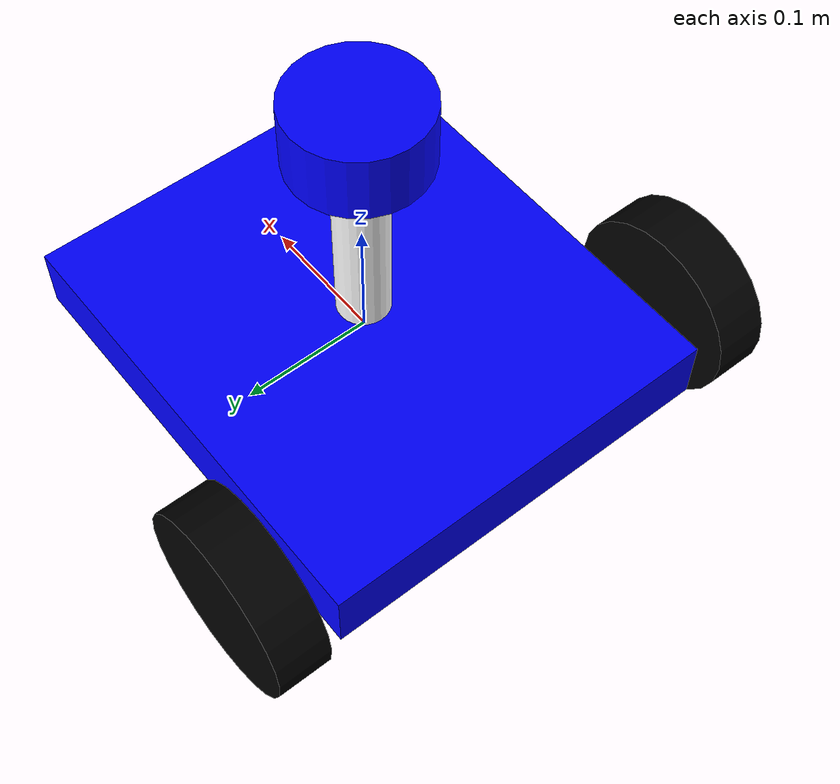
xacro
<?xml version="1.0"?>
<!-- lidar_scanning_robot.xacro -->
<robot xmlns:xacro="http://www.ros.org/wiki/xacro" name="lidar_scanning_robot">

  <!-- Include property definitions -->
  <xacro:include filename="$(find lidar_scanning_robot)/urdf/properties.xacro" />

  <!-- Include robot macros -->
  <xacro:include filename="$(find lidar_scanning_robot)/urdf/macros.xacro" />

  <!-- Include Gazebo configurations -->
  <xacro:include filename="$(find lidar_scanning_robot)/urdf/gazebo.xacro" />

  <!-- Include Lidar -->
  <xacro:include filename="$(find lidar_scanning_robot)/urdf/lidar.xacro" />

  <!-- Base Link -->
  <link name="base_link">
    <origin xyz="0.2 0.1 ${base_height/2}" rpy="0 0 0"/>
    <visual>
      <geometry>
        <box size="${base_length} ${base_width} ${base_height/2}"/>
      </geometry>
      <material name="blue">
        <color rgba="0 0 1 1"/>
      </material>
    </visual>
    <collision>
      <geometry>
        <box size="${base_length} ${base_width} ${base_height}"/>
      </geometry>
    </collision>
    <inertial>
      <mass value="0.5"/>
      <inertia ixx="0.001" ixy="0" ixz="0" iyy="0.001" iyz="0" izz="0.001"/>
      <origin xyz="0 0 0" rpy="0 0 0"/>
    </inertial>
  </link>

  <xacro:caster_wheel />

  <xacro:wheel prefix="left" x="${-base_length/3}" y="1"/>
  <xacro:wheel prefix="right" x="${-base_length/3}" y="-1"/>

</robot>

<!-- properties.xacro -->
<robot xmlns:xacro="http://www.ros.org/wiki/xacro">
  <!-- Robot Properties -->
  <xacro:property name="base_width" value="0.31"/>
  <xacro:property name="base_length" value="0.35"/>
  <xacro:property name="base_height" value="0.1"/>
  <xacro:property name="wheel_radius" value="0.07"/>
  <xacro:property name="wheel_width" value="0.04"/>
  <xacro:property name="caster_radius" value="0.02"/>
  <xacro:property name="arm_length" value="0.1"/>
  <xacro:property name="arm_radius" value="0.015"/>

  <xacro:property name="wall_length" value="0.3"/>
  <xacro:property name="wall_thickness" value="0.01"/>
  <xacro:property name="wall_height" value="0.16"/>

  <!-- LIDAR properties -->
  <xacro:property name="lidar_cylinder_height" value="0.2"/>
  <xacro:property name="lidar_radius" value="0.05"/>
  <xacro:property name="lidar_height" value="0.05"/>
  <xacro:property name="lidar_mount_x" value="0.0"/>
  <xacro:property name="lidar_mount_y" value="0.0"/>
</robot>

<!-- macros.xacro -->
<robot xmlns:xacro="http://www.ros.org/wiki/xacro">
  <!-- Wheel Macro -->
  <xacro:macro name="wheel" params="prefix x y">
    <link name="${prefix}_wheel">
      <visual>
        <geometry>
          <cylinder radius="${wheel_radius}" length="${wheel_width}"/>
        </geometry>
        <material name="black">
          <color rgba="0 0 0 1"/>
        </material>
      </visual>
      <collision>
        <geometry>
          <cylinder radius="${wheel_radius}" length="${2 * wheel_width}"/>
        </geometry>
      </collision>
      <inertial>
        <mass value="1"/>
        <inertia ixx="0.0007" ixy="0" ixz="0" iyy="0.0007" iyz="0" izz="0.0007"/>
      </inertial>
    </link>

    <joint name="${prefix}_wheel_joint" type="continuous">
      <parent link="base_link"/>
      <child link="${prefix}_wheel"/>
      <origin xyz="${x} ${y * (base_width/2 + wheel_radius/2)} 0" rpy="${pi/2} 0 0"/>
      <axis xyz="0 0 -1"/>
      <joint_properties damping="0.5" friction="0.5"/>
    </joint>
  </xacro:macro>

  <!-- Caster Wheel Macro -->
  <xacro:macro name="caster_wheel">
    <link name="caster_wheel">
      <visual>
        <geometry>
          <sphere radius="${caster_radius}"/>
        </geometry>
        <material name="grey">
          <color rgba="0.5 0.5 0.5 1"/>
        </material>
      </visual>
      <collision>
        <geometry>
          <sphere radius="${caster_radius}"/>
        </geometry>
      </collision>
      <inertial>
        <mass value="0.3"/>
        <inertia ixx="0.00018" ixy="0" ixz="0" iyy="0.00018" iyz="0" izz="0.00018"/>
        <origin xyz="0 0 0" rpy="0 0 0" />
      </inertial>
    </link>

    <joint name="caster_wheel_joint" type="fixed">
      <parent link="base_link"/>
      <child link="caster_wheel"/>
      <origin xyz="${base_length/3.3} 0 ${-caster_radius}" rpy="0 0 0"/>  <!-- Corrected Z offset for caster wheel -->
      <dynamics damping="0.01"/>
    </joint>
  </xacro:macro>

  <!-- Arm Macro -->
  <xacro:macro name="arm" params="prefix side_mult">
    <link name="${prefix}_arm">
      <visual>
        <geometry>
          <cylinder radius="${arm_radius}" length="${arm_length}"/>
        </geometry>
        <material name="red">
          <color rgba="1 0 0 1"/>
        </material>
      </visual>
      <collision>
        <geometry>
          <cylinder radius="${arm_radius}" length="${arm_length}"/>
        </geometry>
      </collision>
      <inertial>
        <mass value="0.25"/>
        <inertia ixx="0.0001" ixy="0" ixz="0" iyy="0.0001" iyz="0" izz="0.0001"/>
      </inertial>
    </link>

    <joint name="${prefix}_arm_joint" type="fixed">
      <parent link="base_link"/>
      <child link="${prefix}_arm"/>
      <origin xyz="${base_length/2} ${side_mult * (base_width /2 - 0.005)} 0.04"/>  <!-- Corrected Z offset for arm joint -->
      <axis xyz="0 1 0"/>
      <!-- Adjusted limits for arm movement -->
    </joint>

    <!-- Gripper -->
    <link name="${prefix}_gripper">
      <visual>
        <geometry>
          <box size="${arm_length} 0.02 0.08"/>
        </geometry>
        <material name="grey">
          <color rgba="0.5 0.5 0.5 1"/>
        </material>
      </visual>
      <collision>
        <geometry>
          <box size="${arm_length} 0.02 0.08"/>
        </geometry>
      </collision>
      <inertial>
        <mass value="0.2"/>
        <inertia ixx="0.00005" ixy="0" ixz="0" iyy="0.0005" iyz="0" izz="0.00005"/>
      </inertial>
    </link>

    <joint name="${prefix}_gripper_joint" type="fixed">
      <parent link="${prefix}_arm"/>
      <child link="${prefix}_gripper"/>
      <origin xyz="${arm_length/2} 0 0"/>
    </joint>
  </xacro:macro>

  <xacro:macro name="guide_wall" params="side prefix">
    <link name="${prefix}_wall">
      <visual>
        <geometry>
          <box size="${wall_length} ${wall_thickness} ${wall_height}"/>
        </geometry>
        <material name="grey">
          <color rgba="0.5 0.5 0.5 1"/>
        </material>
      </visual>
      <collision>
        <geometry>
          <box size="${wall_length} ${wall_thickness} ${wall_height}"/>
        </geometry>
      </collision>
      <inertial>
        <mass value="0.3"/>
        <inertia ixx="0.001" ixy="0" ixz="0" iyy="0.001" iyz="0" izz="0.001"/>
      </inertial>
   </link>

   <joint name="${prefix}_wall_joint" type="fixed">
      <parent link="base_link"/>
      <child link="${prefix}_wall"/>
      <origin xyz="${base_length/2 + wall_length/2} ${side * (base_width/2 + wall_thickness/2)} ${wall_height/2}" rpy="0 0 0"/>
    </joint>
  </xacro:macro>

</robot>

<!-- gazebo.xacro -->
<robot xmlns:xacro="http://www.ros.org/wiki/xacro">
  <!-- ROS Control plugin -->
  <gazebo>
    <plugin name="diff_drive_controller" filename="libgazebo_ros_diff_drive.so">
      <robotNamespace>/</robotNamespace>
      <commandTopic>cmd_vel</commandTopic>
      <odometryTopic>odom</odometryTopic>
      <odometryFrame>odom</odometryFrame>
      <robotBaseFrame>base_link</robotBaseFrame>
      <leftJoint>left_wheel_joint</leftJoint>
      <rightJoint>right_wheel_joint</rightJoint>
      <wheelSeparation>${base_width}</wheelSeparation>
      <legacyMode>false</legacyMode>
      <wheelDiameter>${2 * wheel_radius}</wheelDiameter>
      <robotBaseFrame>base_link</robotBaseFrame>
      <publishOdomTF>true</publishOdomTF>
      <publishWheelJointState>true</publishWheelJointState>
      <max_wheel_torque>10</max_wheel_torque>
      <wheelAcceleration>0.5</wheelAcceleration>
      <max_wheel_acceleration>0.5</max_wheel_acceleration>
      <wheelTorque>10</wheelTorque>
      <updateRate>50</updateRate>
      <max_velocity>0.5</max_velocity>
      <rosDebugLevel>0</rosDebugLevel>
    </plugin>
  </gazebo>

  <gazebo reference="laser_link">
    <sensor type="ray" name="rplidar">
      <pose>0 0 0 0 0 0</pose>
      <visualize>true</visualize>
      <update_rate>10</update_rate>
      <ray>
        <scan>
          <horizontal>
            <samples>360</samples>
            <resolution>1</resolution>
            <min_angle>-3.14159</min_angle>
            <max_angle>3.14159</max_angle>
          </horizontal>
        </scan>
        <range>
          <min>0.1</min>
          <max>6.0</max>
          <resolution>0.01</resolution>
        </range>
      </ray>
      <plugin name="gazebo_ros_rplidar_controller" filename="libgazebo_ros_laser.so">
        <topicName>/scan</topicName>
        <frameName>laser_link</frameName>
      </plugin>
    </sensor>
  </gazebo>

  <material name="orange">
    <color rgba="1.0 0.423529411765 0.0392156862745 1.0"/>
  </material>

  <material name="black">
    <color rgba="0 0 0 1"/>
  </material>

  <gazebo reference="base_link">
    <material>Gazebo/Blue</material>
    <mu1 value="1.0"/>
    <mu2 value="1.0"/>
    <kp  value="10000000.0"/>
    <kd  value="100.0"/>
    <maxVel>0.0</maxVel>
    <minDepth>0.001</minDepth>
  </gazebo>

  <gazebo reference="caster_wheel">
    <mu1 value="1.0"/>
    <mu2 value="1.0"/>
    <kp  value="10000000.0" />
    <kd  value="1.0" />
    <material>Gazebo/Orange</material>
  </gazebo>
  <gazebo reference="right_wheel">
    <mu1 value="1.5"/>
    <mu2 value="1.5"/>
    <kp  value="10000000.0" />
    <kd  value="1.0" />
    <fdir1 value="1 0 0"/>
    <material>Gazebo/Black</material>
  </gazebo>
  <gazebo reference="left_wheel">
    <mu1 value="1.5"/>
    <mu2 value="1.5"/>
    <kp  value="10000000.0" />
    <kd  value="1.0" />
    <fdir1 value="1 0 0"/>
    <material>Gazebo/Black</material>
  </gazebo>
  <gazebo reference="left_wall">
    <material>Gazebo/Grey</material>
    <mu1 value="1.0"/>
    <mu2 value="1.0"/>
    <kp  value="10000000.0"/>
    <kd  value="100.0"/>
    <maxVel>0.0</maxVel>
    <minDepth>0.001</minDepth>
  </gazebo>
  <gazebo reference="right_wall">
    <material>Gazebo/Grey</material>
    <mu1 value="1.0"/>
    <mu2 value="1.0"/>
    <kp  value="10000000.0"/>
    <kd  value="100.0"/>
    <maxVel>0.0</maxVel>
    <minDepth>0.001</minDepth>
  </gazebo>

</robot>

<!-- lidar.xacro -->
<robot xmlns:xacro="http://www.ros.org/wiki/xacro">
  <!-- Lidar cylinder -->
  <link name="lidar_base_cylinder">
    <visual>
      <geometry>
        <cylinder length="${lidar_cylinder_height}" radius="0.02"/>
      </geometry>
      <material name="white">
        <color rgba="1 1 1 1"/>
      </material>
    </visual>
    <collision>
      <geometry>
        <cylinder length="${lidar_cylinder_height}" radius="0.02"/>
      </geometry>
    </collision>
    <inertial>
      <mass value="0.2"/>
      <inertia ixx="0.00001" ixy="0" ixz="0" iyy="0.00001" iyz="0" izz="0.00001"/>
    </inertial>
  </link>

  <joint name="base_to_cylinder" type="fixed">
    <parent link="base_link"/>
    <child link="lidar_base_cylinder"/>
    <origin xyz="0 0 ${base_height}" rpy="0 0 0"/>
  </joint>
  <!-- Lidar Link -->
  <link name="laser_link">
    <inertial>
      <mass value="0.1"/>
      <origin xyz="0 0 0" rpy="0 0 0"/>
      <inertia ixx="0.00001" ixy="0.0" ixz="0.0"
        iyy="0.00001" iyz="0.0"
        izz="0.00001"/>
    </inertial>
    <visual>
      <geometry>
        <cylinder length="${lidar_height}" radius="${lidar_radius}"/>
      </geometry>
      <origin xyz="0 0 0" rpy="0 0 0"/>
      <material name="blue">
        <color rgba="0 0 1 1"/>
      </material>
    </visual>

    <collision>
      <origin xyz="0 0 0" rpy="0 0 0"/>
      <geometry>
        <cylinder length="${lidar_height}" radius="${lidar_radius}"/>
      </geometry>
    </collision>
  </link>

  <!-- LiDAR Joint -->
  <joint name="laser_joint" type="fixed">
    <parent link="lidar_base_cylinder"/>
    <child link="laser_link"/>
    <origin xyz="${lidar_mount_x} ${lidar_mount_y} ${lidar_cylinder_height - base_height}" rpy="0 0 0"/>
  </joint>
</robot>
